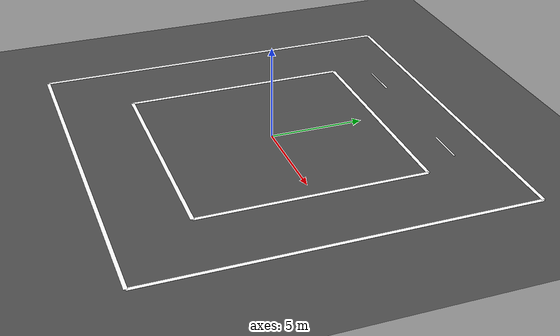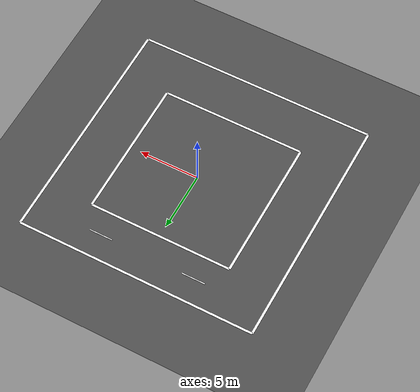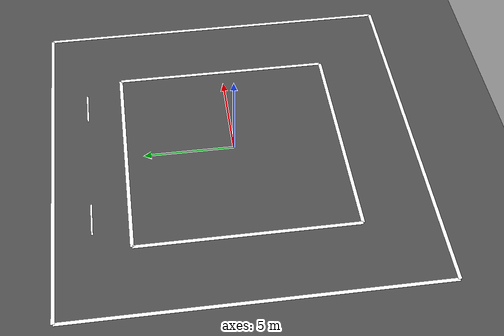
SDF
<?xml version="1.0" ?>
<sdf version="1.6">
  <world name="simple_track">

    <!-- 物理引擎设置 -->
    <physics type="ode">
      <real_time_update_rate>1000.0</real_time_update_rate>
      <max_step_size>0.001</max_step_size>
      <real_time_factor>1</real_time_factor>
    </physics>

    <!-- 场景设置 -->
    <scene>
      <ambient>0.4 0.4 0.4 1</ambient>
      <background>0.7 0.7 0.7 1</background>
      <shadows>1</shadows>
    </scene>

    <!-- 光照 -->
    <light name="sun" type="directional">
      <cast_shadows>true</cast_shadows>
      <pose>0 0 10 0 0 0</pose>
      <diffuse>1 1 1 1</diffuse>
      <specular>0.5 0.5 0.5 1</specular>
      <attenuation>
        <range>1000</range>
        <constant>0.9</constant>
        <linear>0.01</linear>
        <quadratic>0.001</quadratic>
      </attenuation>
      <direction>-0.5 0.1 -0.9</direction>
    </light>

    <!-- 深灰色地面 -->
    <model name="ground_plane">
      <static>true</static>
      <link name="link">
        <collision name="collision">
          <geometry>
            <plane>
              <normal>0 0 1</normal>
              <size>50 50</size>
            </plane>
          </geometry>
        </collision>
        <visual name="visual">
          <geometry>
            <plane>
              <normal>0 0 1</normal>
              <size>50 50</size>
            </plane>
          </geometry>
          <material>
            <ambient>0.3 0.3 0.3 1</ambient>
            <diffuse>0.3 0.3 0.3 1</diffuse>
          </material>
        </visual>
      </link>
    </model>

    <!-- 白色车道线 - 矩形环形赛道 -->
    <!-- 外边界线 -->
    <!-- 上边线 -->
    <model name="line_outer_top">
      <static>true</static>
      <pose>0 10 0.01 0 0 0</pose>
      <link name="link">
        <visual name="visual">
          <geometry>
            <box>
              <size>20 0.2 0.01</size>
            </box>
          </geometry>
          <material>
            <ambient>1 1 1 1</ambient>
            <diffuse>1 1 1 1</diffuse>
          </material>
        </visual>
      </link>
    </model>

    <!-- 下边线 -->
    <model name="line_outer_bottom">
      <static>true</static>
      <pose>0 -10 0.01 0 0 0</pose>
      <link name="link">
        <visual name="visual">
          <geometry>
            <box>
              <size>20 0.2 0.01</size>
            </box>
          </geometry>
          <material>
            <ambient>1 1 1 1</ambient>
            <diffuse>1 1 1 1</diffuse>
          </material>
        </visual>
      </link>
    </model>

    <!-- 左边线 -->
    <model name="line_outer_left">
      <static>true</static>
      <pose>-10 0 0.01 0 0 1.57</pose>
      <link name="link">
        <visual name="visual">
          <geometry>
            <box>
              <size>20 0.2 0.01</size>
            </box>
          </geometry>
          <material>
            <ambient>1 1 1 1</ambient>
            <diffuse>1 1 1 1</diffuse>
          </material>
        </visual>
      </link>
    </model>

    <!-- 右边线 -->
    <model name="line_outer_right">
      <static>true</static>
      <pose>10 0 0.01 0 0 1.57</pose>
      <link name="link">
        <visual name="visual">
          <geometry>
            <box>
              <size>20 0.2 0.01</size>
            </box>
          </geometry>
          <material>
            <ambient>1 1 1 1</ambient>
            <diffuse>1 1 1 1</diffuse>
          </material>
        </visual>
      </link>
    </model>

    <!-- 内边界线 -->
    <!-- 内上边线 -->
    <model name="line_inner_top">
      <static>true</static>
      <pose>0 6 0.01 0 0 0</pose>
      <link name="link">
        <visual name="visual">
          <geometry>
            <box>
              <size>12 0.2 0.01</size>
            </box>
          </geometry>
          <material>
            <ambient>1 1 1 1</ambient>
            <diffuse>1 1 1 1</diffuse>
          </material>
        </visual>
      </link>
    </model>

    <!-- 内下边线 -->
    <model name="line_inner_bottom">
      <static>true</static>
      <pose>0 -6 0.01 0 0 0</pose>
      <link name="link">
        <visual name="visual">
          <geometry>
            <box>
              <size>12 0.2 0.01</size>
            </box>
          </geometry>
          <material>
            <ambient>1 1 1 1</ambient>
            <diffuse>1 1 1 1</diffuse>
          </material>
        </visual>
      </link>
    </model>

    <!-- 内左边线 -->
    <model name="line_inner_left">
      <static>true</static>
      <pose>-6 0 0.01 0 0 1.57</pose>
      <link name="link">
        <visual name="visual">
          <geometry>
            <box>
              <size>12 0.2 0.01</size>
            </box>
          </geometry>
          <material>
            <ambient>1 1 1 1</ambient>
            <diffuse>1 1 1 1</diffuse>
          </material>
        </visual>
      </link>
    </model>

    <!-- 内右边线 -->
    <model name="line_inner_right">
      <static>true</static>
      <pose>6 0 0.01 0 0 1.57</pose>
      <link name="link">
        <visual name="visual">
          <geometry>
            <box>
              <size>12 0.2 0.01</size>
            </box>
          </geometry>
          <material>
            <ambient>1 1 1 1</ambient>
            <diffuse>1 1 1 1</diffuse>
          </material>
        </visual>
      </link>
    </model>

    <model name="center_line_2">
      <static>true</static>
      <pose>4 8 0.01 0 0 0</pose>
      <link name="link">
        <visual name="visual">
          <geometry>
            <box>
              <size>2 0.1 0.01</size>
            </box>
          </geometry>
          <material>
            <ambient>1 1 1 1</ambient>
            <diffuse>1 1 1 1</diffuse>
          </material>
        </visual>
      </link>
    </model>

    <model name="center_line_3">
      <static>true</static>
      <pose>-4 8 0.01 0 0 0</pose>
      <link name="link">
        <visual name="visual">
          <geometry>
            <box>
              <size>2 0.1 0.01</size>
            </box>
          </geometry>
          <material>
            <ambient>1 1 1 1</ambient>
            <diffuse>1 1 1 1</diffuse>
          </material>
        </visual>
      </link>
    </model>

  </world>
</sdf>
